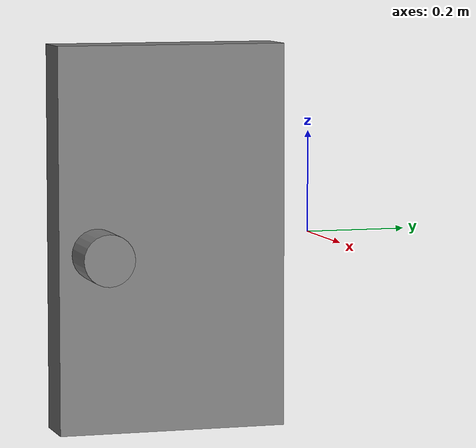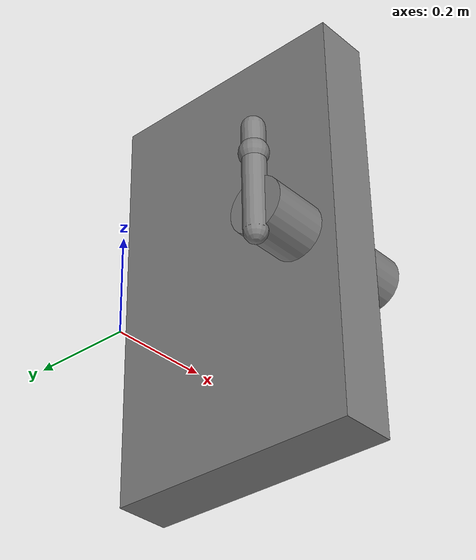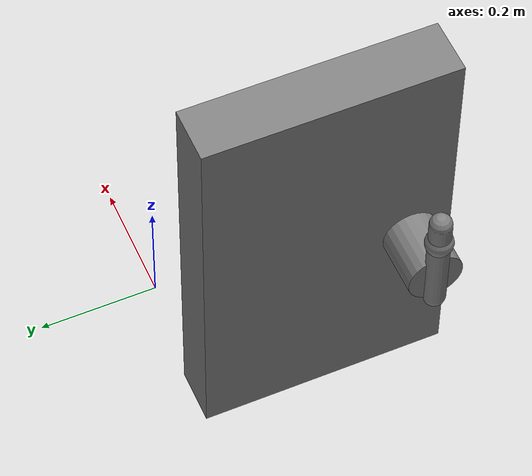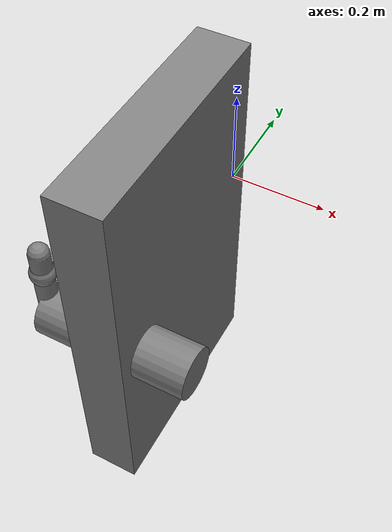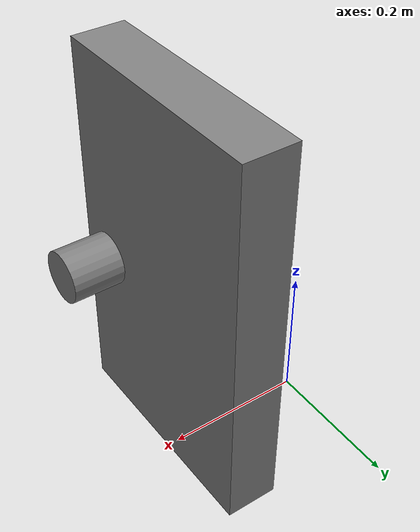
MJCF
<!-- from https://github.com/vikashplus/mj_envs/tree/master/mj_envs/hand_manipulation_suite/assets -->
<!-- Information about door can be found in this paper: https://arxiv.org/pdf/1709.10087.pdf -->

<mujoco model="door">
    <worldbody>
      <body name="door_body">
        <body name="collision">
          <body name="frame" pos="0 0 0" quat="0.707388 0 0 -0.706825">

              <!-- these are the frames of the door -->
              <body name="door" pos="0.29 0 0">
                  <inertial pos="0.0296816 -0.00152345 0" quat="0.701072 0 0 0.713091" mass="2.43455" diaginertia="0.0913751 0.0521615 0.043714" />
                  <joint name="door_hinge" pos="-0.225 0 0" axis="0 0 1" range="0 1.57" limited="true" damping="0.01" />

                  <geom size="0.225 0.05 0.375" type="box" friction="1 1 1" group="1"/>
                  <body name="latch" pos="0.15 0 -0.025">
                      <inertial pos="-0.017762 0.0138544 0" quat="0.365653 0.605347 -0.36522 0.605365" mass="0.10" diaginertia="0.0483771 0.0410001 0.0111013" />
                      <geom size="0.05 0.15" quat="0.707388 0.706825 0 0" type="cylinder"  group="1" />
                      <geom size="0.02 0.1" pos="0 -0.15 0.05" quat="0.707388 0 0 0.706825" type="capsule"  group="1"/>
                      <site name="S_handle" pos="0 -0.15 0.100" size="0.025" group="1"/>
                  </body>
              </body>
          </body>
        </body>
      </body>
    </worldbody>
</mujoco>
